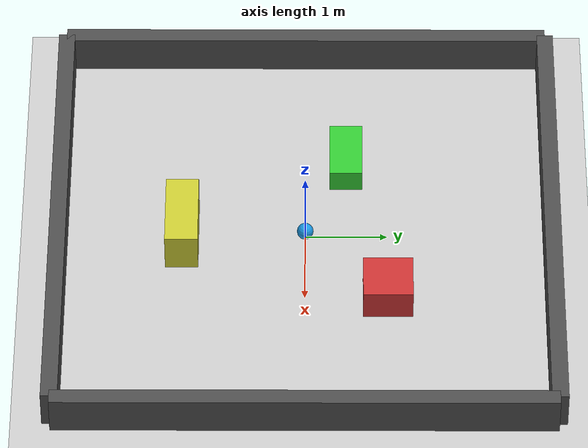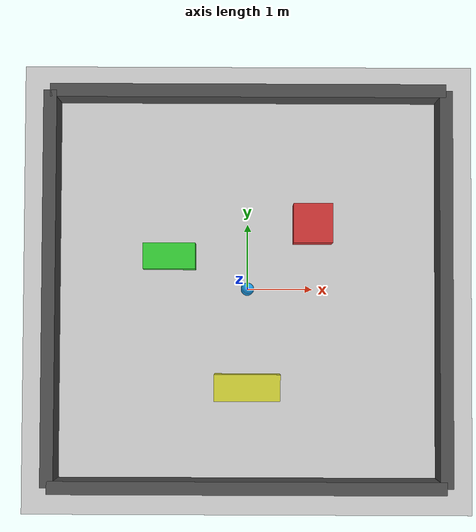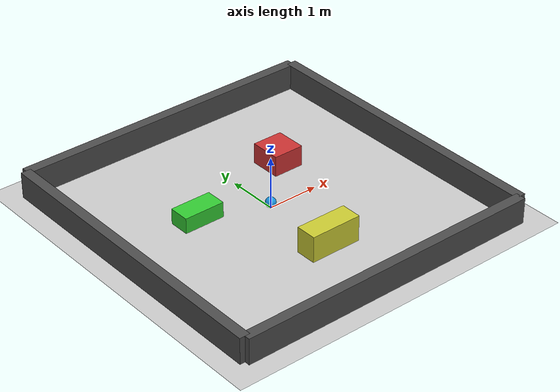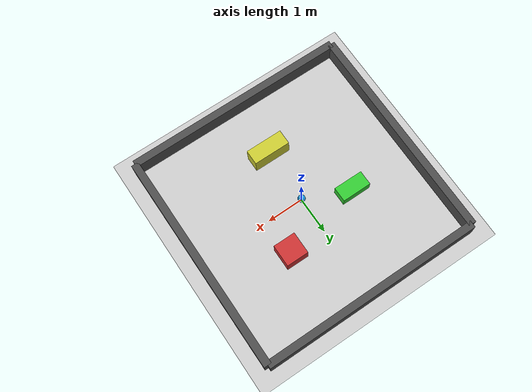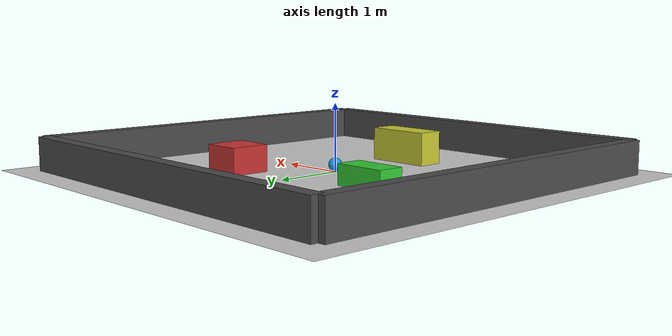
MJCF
<mujoco model="spherical_robot">
    <compiler angle="degree" coordinate="local" inertiafromgeom="true"/>

    <worldbody>
        <geom name="floor" type="plane" size="0 0 0.05" rgba="0.8 0.8 0.8 1" condim="3"/>

        <body name="robot" pos="0 0 0.11">

            <joint name="slide_x" type="slide" axis="1 0 0" damping="0.5"/>
            <joint name="slide_y" type="slide" axis="0 1 0" damping="0.5"/>

            <geom name="robot" type="sphere" size="0.1" mass="1.0" rgba="0.1 0.6 0.9 1" condim="3"/>
        </body>

        <body name="wall_north" pos="0 3 0.25">
            <geom type="box" size="3 0.1 0.25" rgba="0.3 0.3 0.3 1"/>
        </body>
        <body name="wall_south" pos="0 -3 0.25">
            <geom type="box" size="3 0.1 0.25" rgba="0.3 0.3 0.3 1"/>
        </body>
        <body name="wall_east" pos="3 0 0.25">
            <geom type="box" size="0.1 3 0.25" rgba="0.3 0.3 0.3 1"/>
        </body>
        <body name="wall_west" pos="-3 0 0.25">
            <geom type="box" size="0.1 3 0.25" rgba="0.3 0.3 0.3 1"/>
        </body>

        <body name="obstacle_box_1" pos="1.0 1.0 0.2">
            <geom type="box" size="0.3 0.3 0.2" rgba="0.8 0.2 0.2 1" mass="5.0"/>
        </body>
        <body name="obstacle_box_2" pos="-1.2 0.5 0.15">
            <geom type="box" size="0.4 0.2 0.15" rgba="0.2 0.8 0.2 1" mass="5.0"/>
        </body>
        <body name="obstacle_box_3" pos="0.0 -1.5 0.25">
            <geom type="box" size="0.5 0.2 0.25" rgba="0.8 0.8 0.2 1" mass="5.0"/>
        </body>
    </worldbody>

    <actuator>

        <motor name="actuator_x" joint="slide_x" gear="10.0"/>
        <motor name="actuator_y" joint="slide_y" gear="10.0"/>
    </actuator>
</mujoco>
